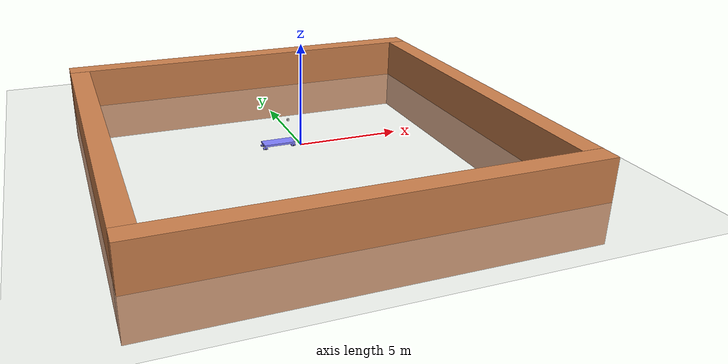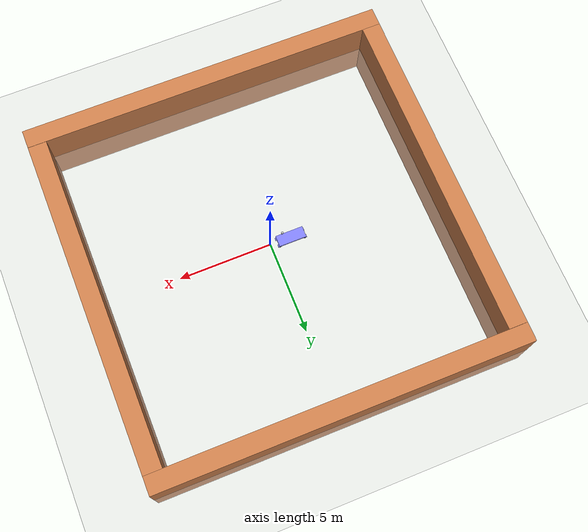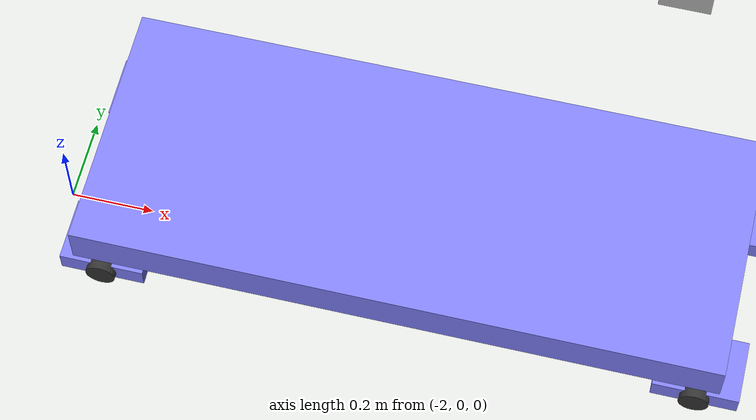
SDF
<sdf version="1.8">
 <world name="demo">
  <plugin filename="gz-sim-physics-system" name="gz::sim::systems::Physics"/>
  <plugin filename="gz-sim-sensors-system" name="gz::sim::systems::Sensors">
   <render_engine>ogre2</render_engine>
  </plugin>
  <plugin filename="gz-sim-scene-broadcaster-system" name="gz::sim::systems::SceneBroadcaster"/>
  <plugin filename="gz-sim-user-commands-system" name="gz::sim::systems::UserCommands"/>
  <plugin filename="BasicSystem" name="ros_gz_example_gazebo::BasicSystem"/>
  <plugin filename="FullSystem" name="ros_gz_example_gazebo::FullSystem"/>
  <light name="sun" type="directional">
   <pose>0 0 10 0 0 0</pose>
   <diffuse>0.8 0.8 0.8 1</diffuse>
   <specular>0.2 0.2 0.2 1</specular>
   <attenuation>
    <range>1000</range>
    <constant>0.9</constant>
    <linear>0.01</linear>
    <quadratic>0.001</quadratic>
   </attenuation>
   <direction>-0.5 0.1 -0.9</direction>
  </light>
  <model name="ground_plane">
   <static>true</static>
   <link name="link">
    <collision name="collision">
     <geometry><plane><normal>0 0 1</normal><size>100 100</size></plane></geometry>
     <surface><friction><ode><mu>0.5</mu><mu2>0.5</mu2></ode></friction></surface>
    </collision>
    <visual name="visual">
     <geometry><plane><normal>0 0 1</normal><size>100 100</size></plane></geometry>
     <material>
      <ambient>0.8 0.8 0.8 1</ambient>
      <diffuse>0.8 0.8 0.8 1</diffuse>
      <specular>0.8 0.8 0.8 1</specular>
     </material>
    </visual>
   </link>
  </model>
  <model name="diff_drive">
   <self_collide>true</self_collide>
   <pose>0.0 0 0.35 0 0 0</pose>
   <include merge="true">
    <uri>package://ros_gz_example_description/models/nipper/chassis_nipper.sdf</uri>
   </include>
   <plugin filename="gz-sim-joint-state-publisher-system" name="gz::sim::systems::JointStatePublisher"/>
   <plugin filename="gz-sim-odometry-publisher-system" name="gz::sim::systems::OdometryPublisher">
    <odom_frame>odom</odom_frame>
    <robot_base_frame>base_footprint</robot_base_frame>
   </plugin>
  </model>
  <model name="wall_1">
   <static>true</static>
   <pose>0 9.5 0 0 0 1.57</pose>
   <link name="box">
    <visual name="visual">
     <geometry><box><size>1 20.0 4.0</size></box></geometry>
     <material>
      <ambient>0.8 0.5 0.3 1</ambient>
      <diffuse>0.8 0.5 0.3 1</diffuse>
      <specular>0.5 0.3 0.2 1</specular>
     </material>
    </visual>
    <collision name="collision"><geometry><box><size>1 20.0 4.0</size></box></geometry></collision>
    <sensor name="sensor_contact" type="contact"><contact><collision>collision</collision></contact></sensor>
   </link>
   <plugin filename="libignition-gazebo-touchplugin-system.so" name="ignition::gazebo::systems::TouchPlugin">
    <target>nipper</target>
    <namespace>wall</namespace>
    <time>0.001</time>
    <enabled>true</enabled>
   </plugin>
  </model>
  <model name="wall_2">
   <static>true</static>
   <pose>0 -9.5 0 0 0 1.57</pose>
   <link name="box">
    <visual name="visual">
     <geometry><box><size>1 20.0 4.0</size></box></geometry>
     <material>
      <ambient>0.8 0.5 0.3 1</ambient>
      <diffuse>0.8 0.5 0.3 1</diffuse>
      <specular>0.5 0.3 0.2 1</specular>
     </material>
    </visual>
    <collision name="collision"><geometry><box><size>1 20.0 4.0</size></box></geometry></collision>
    <sensor name="sensor_contact" type="contact"><contact><collision>collision</collision></contact></sensor>
   </link>
   <plugin filename="libignition-gazebo-touchplugin-system.so" name="ignition::gazebo::systems::TouchPlugin">
    <target>nipper</target>
    <namespace>wall</namespace>
    <time>0.001</time>
    <enabled>true</enabled>
   </plugin>
  </model>
  <model name="wall_3">
   <static>true</static>
   <pose>9.5 0 0 0 0 0</pose>
   <link name="box">
    <visual name="visual">
     <geometry><box><size>1 18.0 4.0</size></box></geometry>
     <material>
      <ambient>0.8 0.5 0.3 1</ambient>
      <diffuse>0.8 0.5 0.3 1</diffuse>
      <specular>0.5 0.3 0.2 1</specular>
     </material>
    </visual>
    <collision name="collision"><geometry><box><size>1 18.0 2.0</size></box></geometry></collision>
    <sensor name="sensor_contact" type="contact"><contact><collision>collision</collision></contact></sensor>
   </link>
   <plugin filename="libignition-gazebo-touchplugin-system.so" name="ignition::gazebo::systems::TouchPlugin">
    <target>nipper</target>
    <namespace>wall</namespace>
    <time>0.001</time>
    <enabled>true</enabled>
   </plugin>
  </model>
  <model name="wall_4">
   <static>true</static>
   <pose>-9.5 0 0 0 0 0</pose>
   <link name="box">
    <visual name="visual">
     <geometry><box><size>1 18.0 4.0</size></box></geometry>
     <material>
      <ambient>0.8 0.5 0.3 1</ambient>
      <diffuse>0.8 0.5 0.3 1</diffuse>
      <specular>0.5 0.3 0.2 1</specular>
     </material>
    </visual>
    <collision name="collision"><geometry><box><size>1 18.0 4.0</size></box></geometry></collision>
    <sensor name="sensor_contact" type="contact"><contact><collision>collision</collision></contact></sensor>
   </link>
   <plugin filename="libignition-gazebo-touchplugin-system.so" name="ignition::gazebo::systems::TouchPlugin">
    <target>nipper</target>
    <namespace>wall</namespace>
    <time>0.001</time>
    <enabled>true</enabled>
   </plugin>
  </model>
 </world>
</sdf>

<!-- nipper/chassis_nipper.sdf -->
<sdf version="1.8">
    <model name='nipper'>

      <!-- base_link just a rectangle -->

      <link name='base_link'>
      <pose>-1.15 0.05 -0.10 0 -0 0</pose>
      <inertial>
          <mass>305</mass>
          <inertia>
            <ixx>3.82</ixx>
            <iyy>6.73</iyy>
            <izz>10.42</izz>
            <ixy>0</ixy>
            <ixz>0</ixz>
            <iyz>0</iyz>
          </inertia>
        </inertial>
        <visual name='visual_base_link'>
          <geometry>
            <box>
              <size>1.5 0.6 0.1</size>
            </box>
          </geometry>
          <material>
            <ambient>0.5 0.5 1.0 1</ambient>
            <diffuse>0.5 0.5 1.0 1</diffuse>
            <specular>0.0 0.0 1.0 1</specular>
          </material>
        </visual>
        <collision name='collision_base_link'>
          <geometry>
            <box>
              <size>1.5 0.6 0.1</size>
            </box>
          </geometry>
        </collision>

      </link>

      <!-- WheelSet Right of Nipper Robot -->

      <link name='wheelset_right'>
        <pose>-0.45 -0.15 -0.25 0 -0 0</pose>
        <inertial>
          <mass>4.8</mass>
          <inertia>
            <ixx>0.126164</ixx>
            <ixy>0</ixy>
            <ixz>0</ixz>
            <iyy>0.416519</iyy>
            <iyz>0</iyz>
            <izz>0.481014</izz>
          </inertia>
        </inertial>
        <visual name='wheelset_right_visual_base_link'>
          <geometry>
            <box>
              <size>0.2 0.15 0.05</size>
            </box>
          </geometry>
          <material>
            <ambient>0.5 0.5 1.0 1</ambient>
            <diffuse>0.5 0.5 1.0 1</diffuse>
            <specular>0.0 0.0 1.0 1</specular>
          </material>
        </visual>
        <collision name='wheelset_right_collision_base_link'>
          <geometry>
            <box>
              <size>0.2 0.15 0.05</size>
            </box>
          </geometry>
        </collision>
      </link>

      <link name='wheelset_right_left_wheel'>
        <pose>-0.45 -0.075 -0.25 -1.5707 0 0</pose>
        <inertial>
          <mass>0.2</mass>
          <inertia>
            <ixx>0.145833</ixx>
            <ixy>0</ixy>
            <ixz>0</ixz>
            <iyy>0.145833</iyy>
            <iyz>0</iyz>
            <izz>0.125</izz>
          </inertia>
        </inertial>
        <visual name='wheelset_right_visual_left_wheel'>
          <geometry>
            <cylinder>
            <radius>0.035</radius>
            <length>0.03</length>
            </cylinder>
          </geometry>
          <material>
            <ambient>0.2 0.2 0.2 1</ambient>
            <diffuse>0.2 0.2 0.2 1</diffuse>
            <specular>0.2 0.2 0.2 1</specular>
          </material>
        </visual>
        <collision name='wheelset_right_collision_left_wheel'>
          <geometry>
            <sphere>
              <radius>0.035</radius>
            </sphere>
          </geometry>
        </collision>
      </link>

      <link name='wheelset_right_right_wheel'>
        <pose>-0.45 -0.225 -0.25 -1.5707 0 0</pose>
        <inertial>
          <mass>0.2</mass>
          <inertia>
            <ixx>0.145833</ixx>
            <ixy>0</ixy>
            <ixz>0</ixz>
            <iyy>0.145833</iyy>
            <iyz>0</iyz>
            <izz>0.125</izz>
          </inertia>
        </inertial>
        <visual name='wheelset_right_visual_right_wheel'>
          <geometry>
            <cylinder>
            <radius>0.035</radius>
            <length>0.03</length>
            </cylinder>
          </geometry>
          <material>
            <ambient>0.2 0.2 0.2 1</ambient>
            <diffuse>0.2 0.2 0.2 1</diffuse>
            <specular>0.2 0.2 0.2 1</specular>
          </material>
        </visual>
        <collision name='wheelset_right_collision_right_wheel'>
          <geometry>
            <sphere>
              <radius>0.035</radius>
            </sphere>
          </geometry>
        </collision>
      </link>

      <joint name='wheelset_right_left_wheel_joint' type='revolute'>
        <parent>wheelset_right</parent>
        <child>wheelset_right_left_wheel</child>
        <axis>
          <xyz>0 0 1</xyz>
          <limit>
            <lower>-1.79769e+308</lower>
            <upper>1.79769e+308</upper>
          </limit>
        </axis>
      </joint>

      <joint name='wheelset_right_right_wheel_joint' type='revolute'>
        <parent>wheelset_right</parent>
        <child>wheelset_right_right_wheel</child>
        <axis>
          <xyz>0 0 1</xyz>
          <limit>
            <lower>-1.79769e+308</lower>
            <upper>1.79769e+308</upper>
          </limit>
        </axis>
      </joint>

      <!-- Joint controller plugin -->
      <plugin name="gz::sim::systems::JointController" filename="gz-sim-joint-controller-system">
        <joint_name>wheelset_right_left_wheel_joint</joint_name>
      </plugin>

      <plugin name="gz::sim::systems::JointController" filename="gz-sim-joint-controller-system">
        <joint_name>wheelset_right_right_wheel_joint</joint_name>
      </plugin>

      <!-- WheelSet Rear Right of Nipper Robot -->

      <link name='wheelset_rear_right'>
        <pose>-1.85 -0.15 -0.25 0 -0 0</pose>
        <inertial>
          <mass>4.8</mass>
          <inertia>
            <ixx>0.126164</ixx>
            <ixy>0</ixy>
            <ixz>0</ixz>
            <iyy>0.416519</iyy>
            <iyz>0</iyz>
            <izz>0.481014</izz>
          </inertia>
        </inertial>
        <visual name='wheelset_rear_right_visual_base_link'>
          <geometry>
            <box>
              <size>0.2 0.15 0.05</size>
            </box>
          </geometry>
          <material>
            <ambient>0.5 0.5 1.0 1</ambient>
            <diffuse>0.5 0.5 1.0 1</diffuse>
            <specular>0.0 0.0 1.0 1</specular>
          </material>
        </visual>
        <collision name='wheelset_rear_right_collision_base_link'>
          <geometry>
            <box>
              <size>0.2 0.15 0.05</size>
            </box>
          </geometry>
        </collision>
      </link>

      <link name='wheelset_rear_right_left_wheel'>
        <pose>-1.85 -0.075 -0.25 -1.5707 0 0</pose>
        <inertial>
          <mass>0.2</mass>
          <inertia>
            <ixx>0.145833</ixx>
            <ixy>0</ixy>
            <ixz>0</ixz>
            <iyy>0.145833</iyy>
            <iyz>0</iyz>
            <izz>0.125</izz>
          </inertia>
        </inertial>
        <visual name='wheelset_rear_right_visual_left_wheel'>
          <geometry>
            <cylinder>
            <radius>0.035</radius>
            <length>0.03</length>
            </cylinder>
          </geometry>
          <material>
            <ambient>0.2 0.2 0.2 1</ambient>
            <diffuse>0.2 0.2 0.2 1</diffuse>
            <specular>0.2 0.2 0.2 1</specular>
          </material>
        </visual>
        <collision name='wheelset_rear_right_collision_left_wheel'>
          <geometry>
            <sphere>
              <radius>0.035</radius>
            </sphere>
          </geometry>
        </collision>
      </link>

      <link name='wheelset_rear_right_right_wheel'>
        <pose>-1.85 -0.225 -0.25 -1.5707 0 0</pose>
        <inertial>
          <mass>0.2</mass>
          <inertia>
            <ixx>0.145833</ixx>
            <ixy>0</ixy>
            <ixz>0</ixz>
            <iyy>0.145833</iyy>
            <iyz>0</iyz>
            <izz>0.125</izz>
          </inertia>
        </inertial>
        <visual name='wheelset_rear_right_visual_right_wheel'>
          <geometry>
            <cylinder>
            <radius>0.035</radius>
            <length>0.03</length>
            </cylinder>
          </geometry>
          <material>
            <ambient>0.2 0.2 0.2 1</ambient>
            <diffuse>0.2 0.2 0.2 1</diffuse>
            <specular>0.2 0.2 0.2 1</specular>
          </material>
        </visual>
        <collision name='wheelset_rear_right_collision_right_wheel'>
          <geometry>
            <sphere>
              <radius>0.035</radius>
            </sphere>
          </geometry>
        </collision>
      </link>

      <joint name='wheelset_rear_right_left_wheel_joint' type='revolute'>
        <parent>wheelset_rear_right</parent>
        <child>wheelset_rear_right_left_wheel</child>
        <axis>
          <xyz>0 0 1</xyz>
          <limit>
            <lower>-1.79769e+308</lower>
            <upper>1.79769e+308</upper>
          </limit>
        </axis>
      </joint>

      <joint name='wheelset_rear_right_right_wheel_joint' type='revolute'>
        <parent>wheelset_rear_right</parent>
        <child>wheelset_rear_right_right_wheel</child>
        <axis>
          <xyz>0 0 1</xyz>
          <limit>
            <lower>-1.79769e+308</lower>
            <upper>1.79769e+308</upper>
          </limit>
        </axis>
      </joint>

      <!-- Joint controller plugin -->
      <plugin name="gz::sim::systems::JointController" filename="gz-sim-joint-controller-system">
        <joint_name>wheelset_rear_right_left_wheel_joint</joint_name>
      </plugin>

      <plugin name="gz::sim::systems::JointController" filename="gz-sim-joint-controller-system">
        <joint_name>wheelset_rear_right_right_wheel_joint</joint_name>
      </plugin>

      <!-- WheelSet left of Nipper Robot -->

      <link name='wheelset_left'>
        <pose>-0.45 0.25 -0.25 0 -0 0</pose>
        <inertial>
          <mass>4.8</mass>
          <inertia>
            <ixx>0.126164</ixx>
            <ixy>0</ixy>
            <ixz>0</ixz>
            <iyy>0.416519</iyy>
            <iyz>0</iyz>
            <izz>0.481014</izz>
          </inertia>
        </inertial>
        <visual name='wheelset_left_visual_base_link'>
          <geometry>
            <box>
              <size>0.2 0.15 0.05</size>
            </box>
          </geometry>
          <material>
            <ambient>0.5 0.5 1.0 1</ambient>
            <diffuse>0.5 0.5 1.0 1</diffuse>
            <specular>0.0 0.0 1.0 1</specular>
          </material>
        </visual>
        <collision name='wheelset_left_collision_base_link'>
          <geometry>
            <box>
              <size>0.2 0.15 0.05</size>
            </box>
          </geometry>
        </collision>
      </link>

      <link name='wheelset_left_left_wheel'>
        <pose>-0.45 0.325 -0.25 -1.5707 0 0</pose>
        <inertial>
          <mass>0.2</mass>
          <inertia>
            <ixx>0.145833</ixx>
            <ixy>0</ixy>
            <ixz>0</ixz>
            <iyy>0.145833</iyy>
            <iyz>0</iyz>
            <izz>0.125</izz>
          </inertia>
        </inertial>
        <visual name='wheelset_left_visual_left_wheel'>
          <geometry>
            <cylinder>
            <radius>0.035</radius>
            <length>0.03</length>
            </cylinder>
          </geometry>
          <material>
            <ambient>0.2 0.2 0.2 1</ambient>
            <diffuse>0.2 0.2 0.2 1</diffuse>
            <specular>0.2 0.2 0.2 1</specular>
          </material>
        </visual>
        <collision name='wheelset_left_collision_left_wheel'>
          <geometry>
            <sphere>
              <radius>0.035</radius>
            </sphere>
          </geometry>
        </collision>
      </link>

      <link name='wheelset_left_right_wheel'>
        <pose>-0.45 0.175 -0.25 -1.5707 0 0</pose>
        <inertial>
          <mass>0.2</mass>
          <inertia>
            <ixx>0.145833</ixx>
            <ixy>0</ixy>
            <ixz>0</ixz>
            <iyy>0.145833</iyy>
            <iyz>0</iyz>
            <izz>0.125</izz>
          </inertia>
        </inertial>
        <visual name='wheelset_left_visual_right_wheel'>
          <geometry>
            <cylinder>
            <radius>0.035</radius>
            <length>0.03</length>
            </cylinder>
          </geometry>
          <material>
            <ambient>0.2 0.2 0.2 1</ambient>
            <diffuse>0.2 0.2 0.2 1</diffuse>
            <specular>0.2 0.2 0.2 1</specular>
          </material>
        </visual>
        <collision name='wheelset_left_collision_right_wheel'>
          <geometry>
            <sphere>
              <radius>0.035</radius>
            </sphere>
          </geometry>
        </collision>
      </link>

      <joint name='wheelset_left_left_wheel_joint' type='revolute'>
        <parent>wheelset_left</parent>
        <child>wheelset_left_left_wheel</child>
        <axis>
          <xyz>0 0 1</xyz>
          <limit>
            <lower>-1.79769e+308</lower>
            <upper>1.79769e+308</upper>
          </limit>
        </axis>
      </joint>

      <joint name='wheelset_left_right_wheel_joint' type='revolute'>
        <parent>wheelset_left</parent>
        <child>wheelset_left_right_wheel</child>
        <axis>
          <xyz>0 0 1</xyz>
          <limit>
            <lower>-1.79769e+308</lower>
            <upper>1.79769e+308</upper>
          </limit>
        </axis>
      </joint>

      <!-- Joint controller plugin -->
      <plugin name="gz::sim::systems::JointController" filename="gz-sim-joint-controller-system">
        <joint_name>wheelset_left_left_wheel_joint</joint_name>
      </plugin>

      <plugin name="gz::sim::systems::JointController" filename="gz-sim-joint-controller-system">
        <joint_name>wheelset_left_right_wheel_joint</joint_name>
      </plugin>

      <!-- WheelSet Rear left of Nipper Robot -->

      <link name='wheelset_rear_left'>
        <pose>-1.85 0.25 -0.25 0 -0 0</pose>
        <inertial>
          <mass>4.8</mass>
          <inertia>
            <ixx>0.126164</ixx>
            <ixy>0</ixy>
            <ixz>0</ixz>
            <iyy>0.416519</iyy>
            <iyz>0</iyz>
            <izz>0.481014</izz>
          </inertia>
        </inertial>
        <visual name='wheelset_rear_left_visual_base_link'>
          <geometry>
            <box>
              <size>0.2 0.15 0.05</size>
            </box>
          </geometry>
          <material>
            <ambient>0.5 0.5 1.0 1</ambient>
            <diffuse>0.5 0.5 1.0 1</diffuse>
            <specular>0.0 0.0 1.0 1</specular>
          </material>
        </visual>
        <collision name='wheelset_rear_left_collision_base_link'>
          <geometry>
            <box>
              <size>0.2 0.15 0.05</size>
            </box>
          </geometry>
        </collision>
      </link>

      <link name='wheelset_rear_left_left_wheel'>
        <pose>-1.85 0.325 -0.25 -1.5707 0 0</pose>
        <inertial>
          <mass>0.2</mass>
          <inertia>
            <ixx>0.145833</ixx>
            <ixy>0</ixy>
            <ixz>0</ixz>
            <iyy>0.145833</iyy>
            <iyz>0</iyz>
            <izz>0.125</izz>
          </inertia>
        </inertial>
        <visual name='wheelset_rear_left_visual_left_wheel'>
          <geometry>
            <cylinder>
            <radius>0.035</radius>
            <length>0.03</length>
            </cylinder>
          </geometry>
          <material>
            <ambient>0.2 0.2 0.2 1</ambient>
            <diffuse>0.2 0.2 0.2 1</diffuse>
            <specular>0.2 0.2 0.2 1</specular>
          </material>
        </visual>
        <collision name='wheelset_rear_left_collision_left_wheel'>
          <geometry>
            <sphere>
              <radius>0.035</radius>
            </sphere>
          </geometry>
        </collision>
      </link>

      <link name='wheelset_rear_left_right_wheel'>
        <pose>-1.85 0.175 -0.25 -1.5707 0 0</pose>
        <inertial>
          <mass>0.2</mass>
          <inertia>
            <ixx>0.145833</ixx>
            <ixy>0</ixy>
            <ixz>0</ixz>
            <iyy>0.145833</iyy>
            <iyz>0</iyz>
            <izz>0.125</izz>
          </inertia>
        </inertial>
        <visual name='wheelset_rear_left_visual_right_wheel'>
          <geometry>
            <cylinder>
            <radius>0.035</radius>
            <length>0.03</length>
            </cylinder>
          </geometry>
          <material>
            <ambient>0.2 0.2 0.2 1</ambient>
            <diffuse>0.2 0.2 0.2 1</diffuse>
            <specular>0.2 0.2 0.2 1</specular>
          </material>
        </visual>
        <collision name='wheelset_rear_left_collision_right_wheel'>
          <geometry>
            <sphere>
              <radius>0.035</radius>
            </sphere>
          </geometry>
        </collision>
      </link>

      <joint name='wheelset_rear_left_left_wheel_joint' type='revolute'>
        <parent>wheelset_rear_left</parent>
        <child>wheelset_rear_left_left_wheel</child>
        <axis>
          <xyz>0 0 1</xyz>
          <limit>
            <lower>-1.79769e+308</lower>
            <upper>1.79769e+308</upper>
          </limit>
        </axis>
      </joint>

      <joint name='wheelset_rear_left_right_wheel_joint' type='revolute'>
        <parent>wheelset_rear_left</parent>
        <child>wheelset_rear_left_right_wheel</child>
        <axis>
          <xyz>0 0 1</xyz>
          <limit>
            <lower>-1.79769e+308</lower>
            <upper>1.79769e+308</upper>
          </limit>
        </axis>
      </joint>

      <!-- Joint controller plugin -->
      <plugin name="gz::sim::systems::JointController" filename="gz-sim-joint-controller-system">
        <joint_name>wheelset_rear_left_left_wheel_joint</joint_name>
      </plugin>

      <plugin name="gz::sim::systems::JointController" filename="gz-sim-joint-controller-system">
        <joint_name>wheelset_rear_left_right_wheel_joint</joint_name>
      </plugin>

    <!-- RIGHT -->
    <joint name="wheelset_right_revolute_joint" type="revolute">
      <parent>base_link</parent>
      <child>wheelset_right</child>
      <axis>
        <xyz>0 0 1</xyz>
        <limit>
          <lower>-2.007</lower>
          <upper>2.007</upper>
        </limit>
        <dynamics>
          <damping>50</damping>
          <friction>0.6</friction>
        </dynamics>
      </axis>
    </joint>

    <!-- REAR RIGHT -->
    <joint name="wheelset_rear_right_revolute_joint" type="revolute">
      <parent>base_link</parent>
      <child>wheelset_rear_right</child>
      <axis>
        <xyz>0 0 1</xyz>
        <limit>
          <lower>-2.007</lower>
          <upper>2.007</upper>
        </limit>
        <dynamics>
          <damping>50</damping>
          <friction>0.6</friction>
        </dynamics>
      </axis>
    </joint>

    <!-- FRONT LEFT -->
    <joint name="wheelset_left_revolute_joint" type="revolute">
      <parent>base_link</parent>
      <child>wheelset_left</child>

      <axis>
        <xyz>0 0 1</xyz>
        <limit>
          <lower>-2.007</lower>
          <upper>2.007</upper>
        </limit>
        <dynamics>
          <damping>50</damping>
          <friction>0.6</friction>
        </dynamics>
      </axis>
    </joint>

    <!-- REAR LEFT -->
    <joint name="wheelset_rear_left_revolute_joint" type="revolute">
      <parent>base_link</parent>
      <child>wheelset_rear_left</child>

      <axis>
        <xyz>0 0 1</xyz>
        <limit>
          <lower>-2.007</lower>
          <upper>2.007</upper>
        </limit>
        <dynamics>
          <damping>50</damping>
          <friction>0.6</friction>
        </dynamics>
      </axis>
    </joint>

    <link name="diff_drive/lidar_link">
        <pose>-0.65 0.05 1 0 0 0</pose>
        <inertial>
          <mass>0.1</mass>
          <inertia>
            <ixx>0.000166667</ixx>
            <iyy>0.000166667</iyy>
            <izz>0.000166667</izz>
          </inertia>
        </inertial>
        <collision name="collision">
          <geometry>
            <box>
              <size>0.1 0.1 0.1</size>
            </box>
          </geometry>
        </collision>
        <visual name="visual">
          <geometry>
            <box>
              <size>0.1 0.1 0.1</size>
            </box>
          </geometry>
        </visual>
        <sensor name='gpu_lidar' type='gpu_lidar'>
          <pose>0 0 0 0 0 0</pose>
          <topic>scan</topic>
           <gz_frame_id>diff_drive/lidar_link</gz_frame_id>
          <update_rate>10</update_rate>
          <lidar>
            <scan>
              <horizontal>
                <samples>640</samples>
                <resolution>1</resolution>
                <min_angle>-3.14159</min_angle>
                <max_angle>3.14159</max_angle>
              </horizontal>
              <vertical>
                <samples>1</samples>
                <resolution>1</resolution>
                <min_angle>0.0</min_angle>
                <max_angle>0.0</max_angle>
              </vertical>
            </scan>
            <range>
              <min>0.08</min>
              <max>10.0</max>
              <resolution>0.01</resolution>
            </range>
          </lidar>
          <visualize>true</visualize>
        </sensor>
    </link>

    <joint name='lidar_joint_loc' type='fixed'>
        <parent>base_link</parent>
        <child>diff_drive/lidar_link</child>
    </joint>

    </model>
</sdf>
